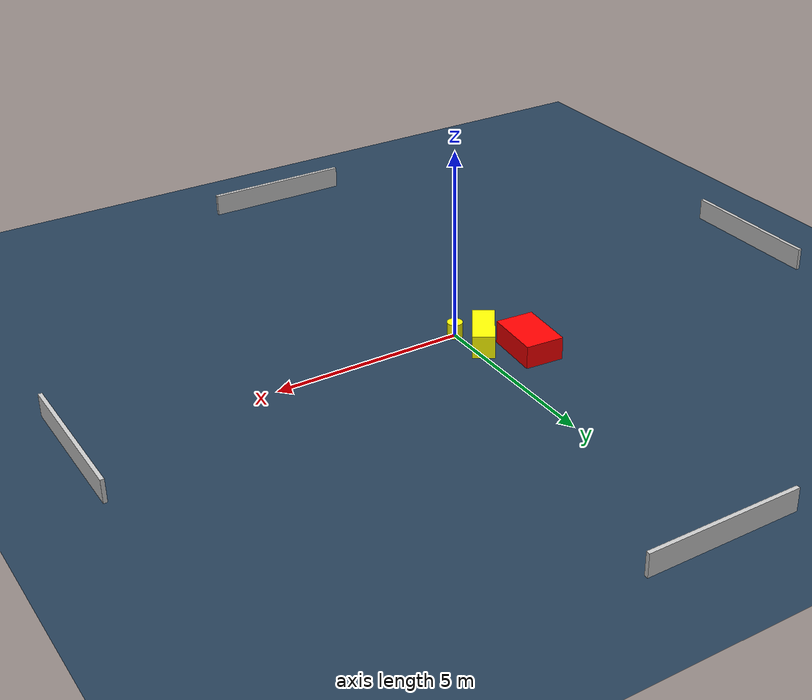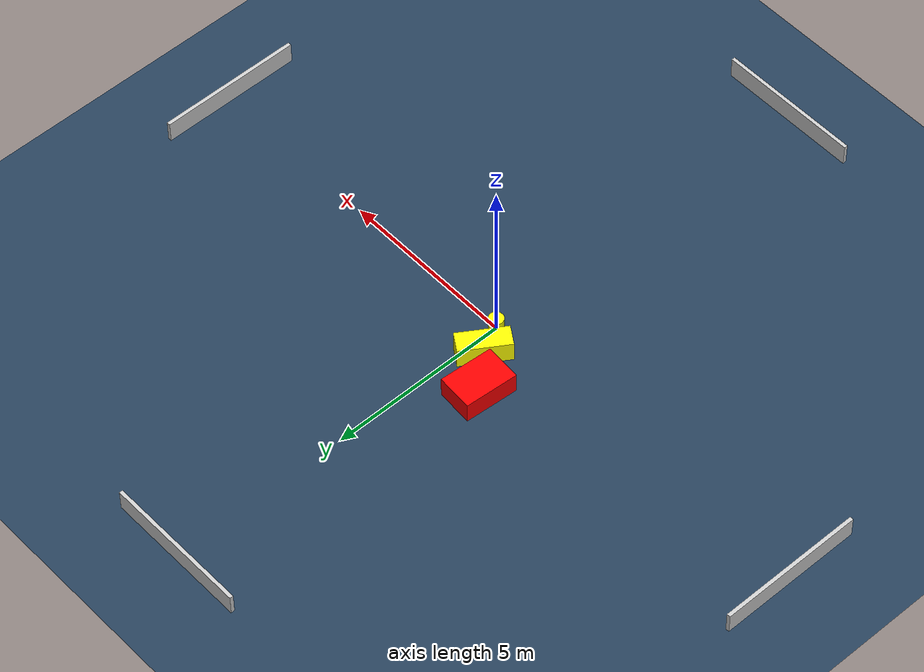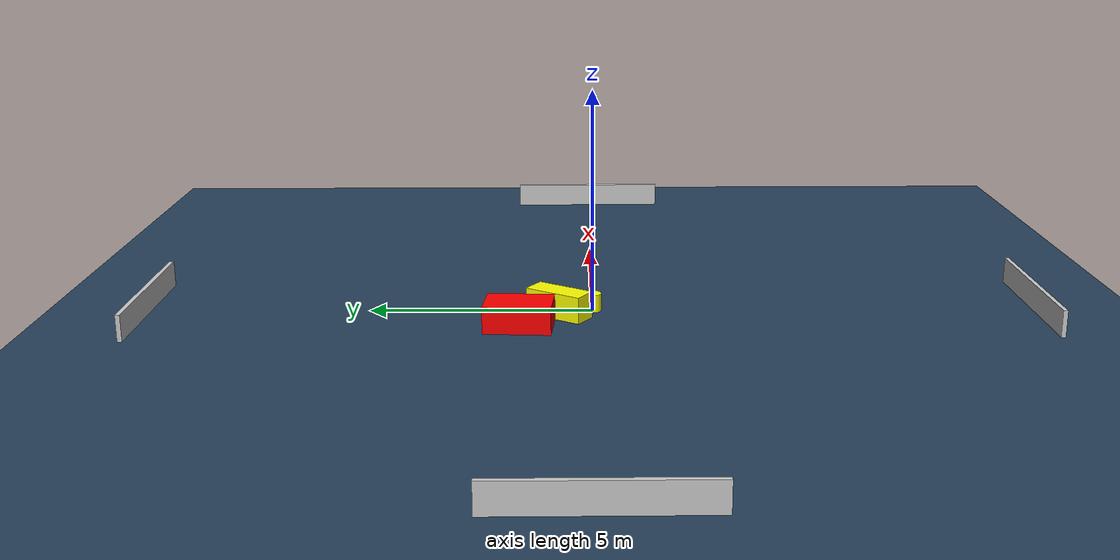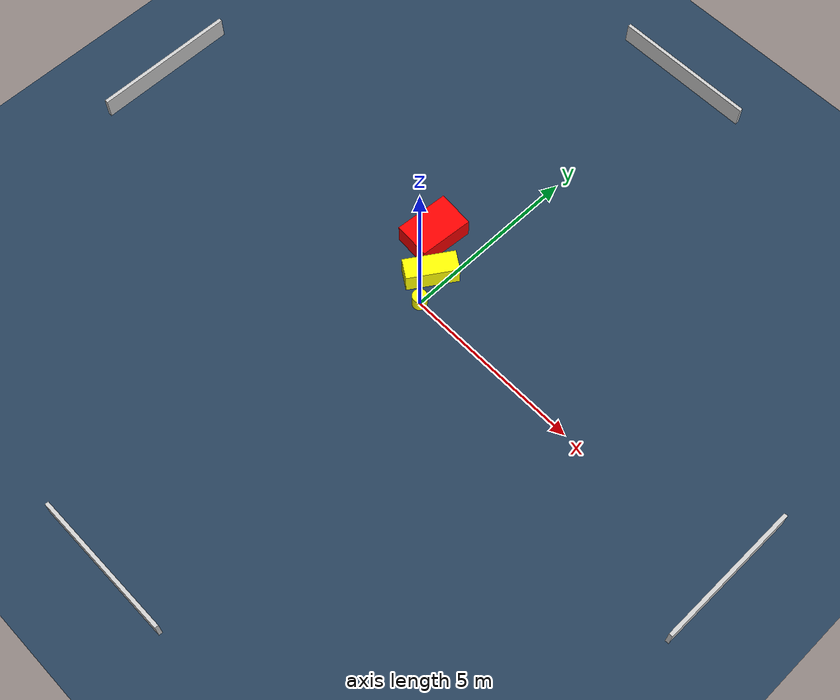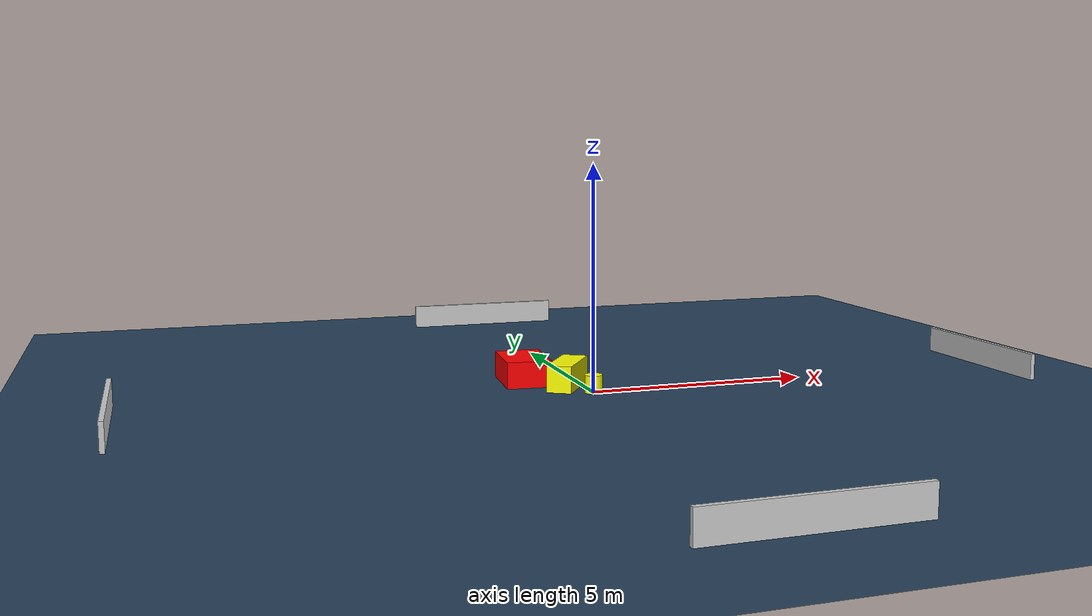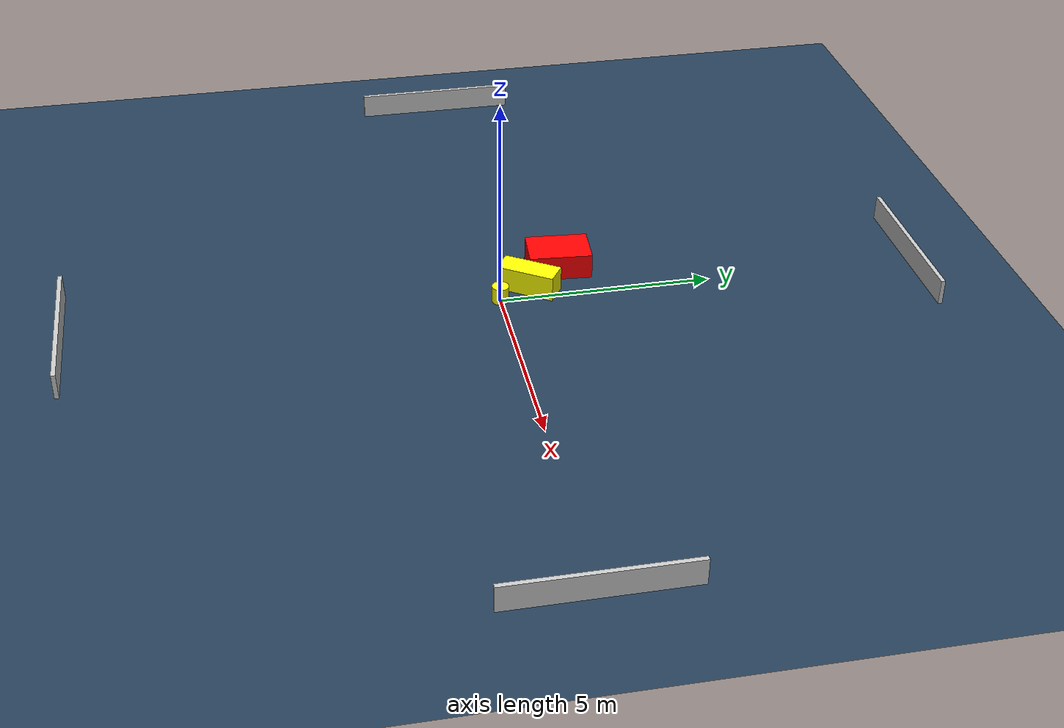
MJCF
<?xml version="1.0" ?>
<mujoco model="generated_environment">
  <option timestep="0.01" integrator="RK4" cone="elliptic"/>
  <default>
    <geom density="1"/>
  </default>
  <asset>
    <texture builtin="gradient" height="3072" name="skybox" rgb1="0.3 0.5 0.7" rgb2="0 0 0" type="skybox" width="512"/>
    <texture builtin="checker" height="300" name="groundplane" rgb1="0.2 0.3 0.4" rgb2="0.1 0.2 0.3" type="2d" width="300"/>
    <material name="groundplane" reflectance="0.2" texrepeat="5 5" texture="groundplane"/>
  </asset>
  <worldbody>
    <light dir="0 0 -1" directional="true" pos="0 0 1.5"/>
    <geom condim="3" friction="0.5 0.005 0.001" material="groundplane" name="floor" pos="0 0 0" size="0 0 0.05" type="plane"/>
    <body name="walls">
      <geom name="wall_1" condim="4" pos="-10.0 0.0 0.3" rgba="0.800000011920929 0.800000011920929 0.800000011920929 1.0" size="0.05 2.0 0.3" type="box"/>
      <geom name="wall_2" condim="4" pos="10.0 0.0 0.3" rgba="0.800000011920929 0.800000011920929 0.800000011920929 1.0" size="0.05 2.0 0.3" type="box"/>
      <geom name="wall_3" condim="4" pos="0.0 -10.0 0.3" rgba="0.800000011920929 0.800000011920929 0.800000011920929 1.0" size="2.0 0.05 0.3" type="box"/>
      <geom name="wall_4" condim="4" pos="0.0 10.0 0.3" rgba="0.800000011920929 0.800000011920929 0.800000011920929 1.0" size="2.0 0.05 0.3" type="box"/>
    </body>
    <body name="robot">
      <joint name="joint_x" type="slide" pos="0 0 0" axis="1 0 0"/>
      <joint name="joint_y" type="slide" pos="0 0 0" axis="0 1 0"/>
      <geom name="robot" type="cylinder" pos="0.0 0.0 0.2" size="0.2 0.2 0.0" mass="5.0" friction="1.0 0.005 0.0001" condim="4" rgba="1.0 1.0 0.0 1.0"/>
    </body>
    <body name="obstacle_1_movable">
      <geom name="obstacle_1_movable" condim="4" pos="-0.3697227234278758 0.7488497521792397 0.3" euler="0 0 56.78519617895223" friction="0.0 0.005 0.001" rgba="1.0 1.0 0.0 1.0" size="0.6969900692960732 0.283980502570597 0.3" type="box" mass="0.1"/>
      <joint type="free"/>
    </body>
    <body name="obstacle_2_static">
      <geom name="obstacle_2_static" condim="4" pos="-1.1518223751331205 1.6177945789844617 0.3" euler="0 0 355.7528799753976" friction="0.0 0.005 0.001" rgba="1.0 0.0 0.0 1.0" size="0.5070394213488671 0.74320138215706 0.3" type="box"/>
    </body>
  </worldbody>
  <actuator>
    <motor name="actuator_x" joint="joint_x" gear="1" ctrlrange="-1 1"/>
    <motor name="actuator_y" joint="joint_y" gear="1" ctrlrange="-1 1"/>
  </actuator>
</mujoco>
